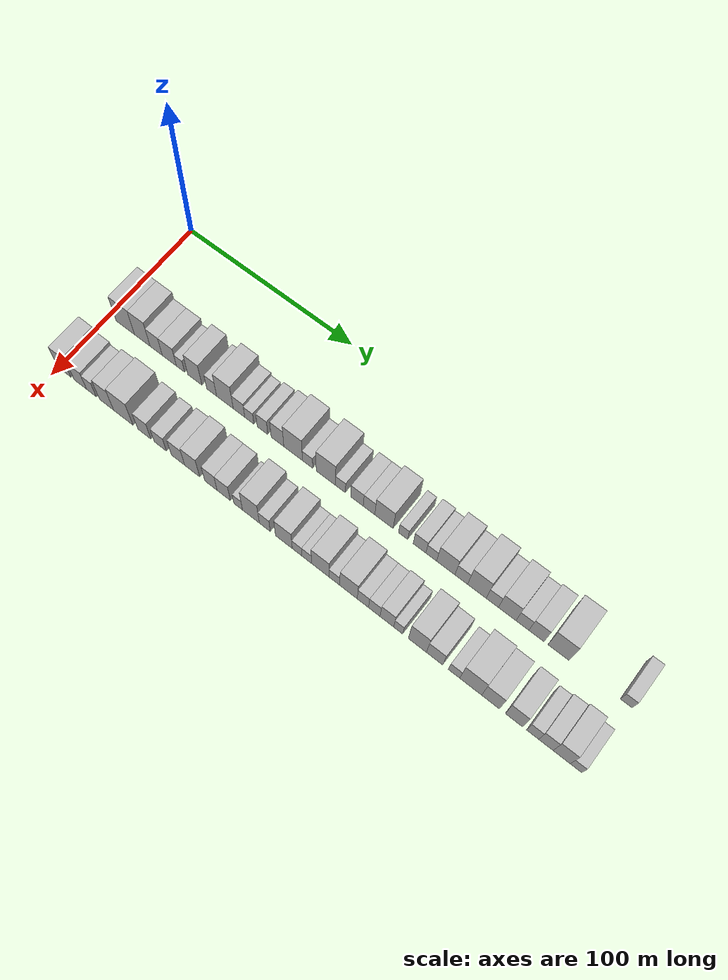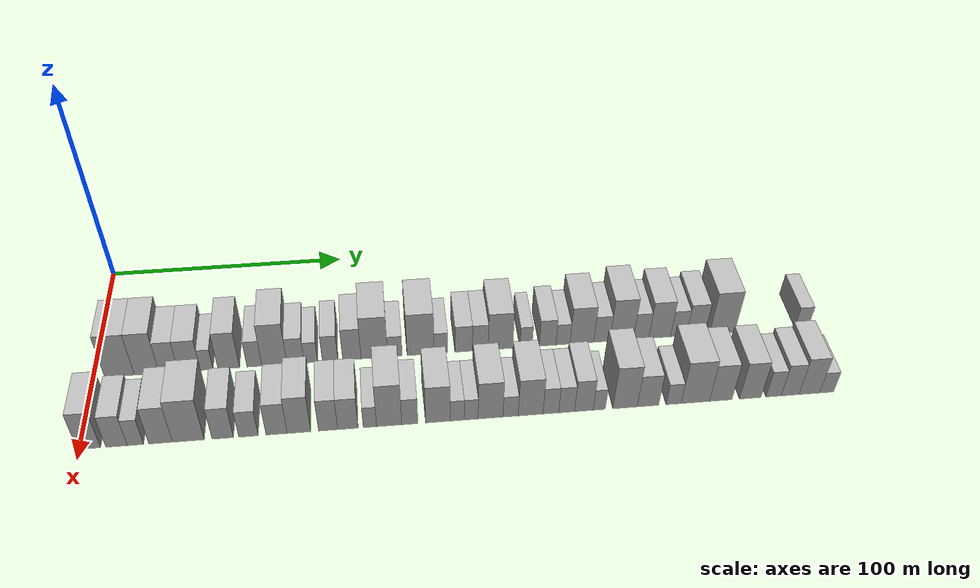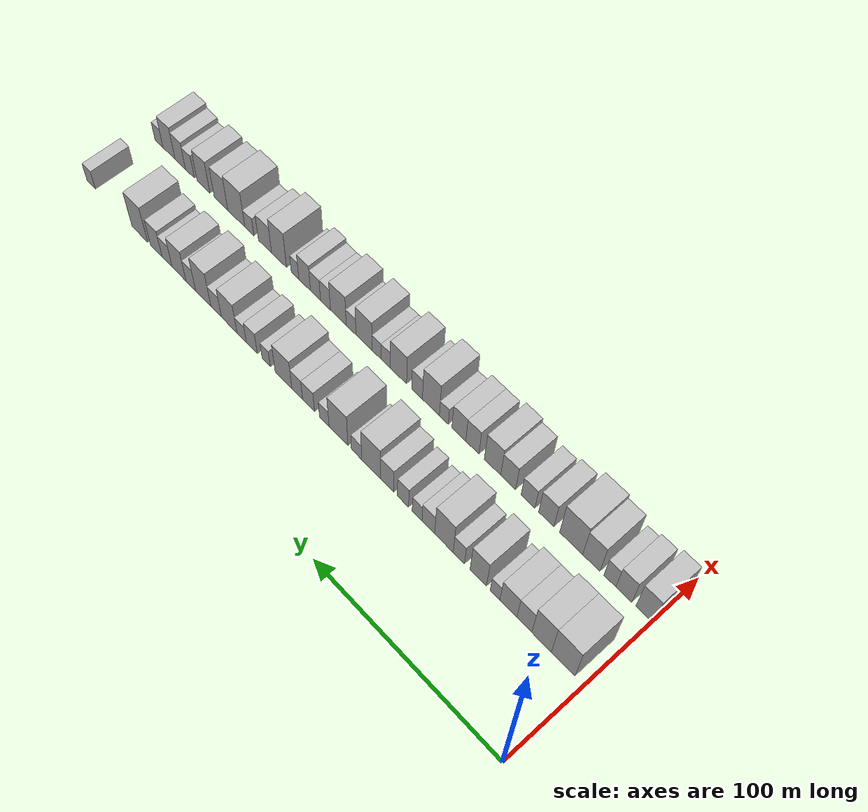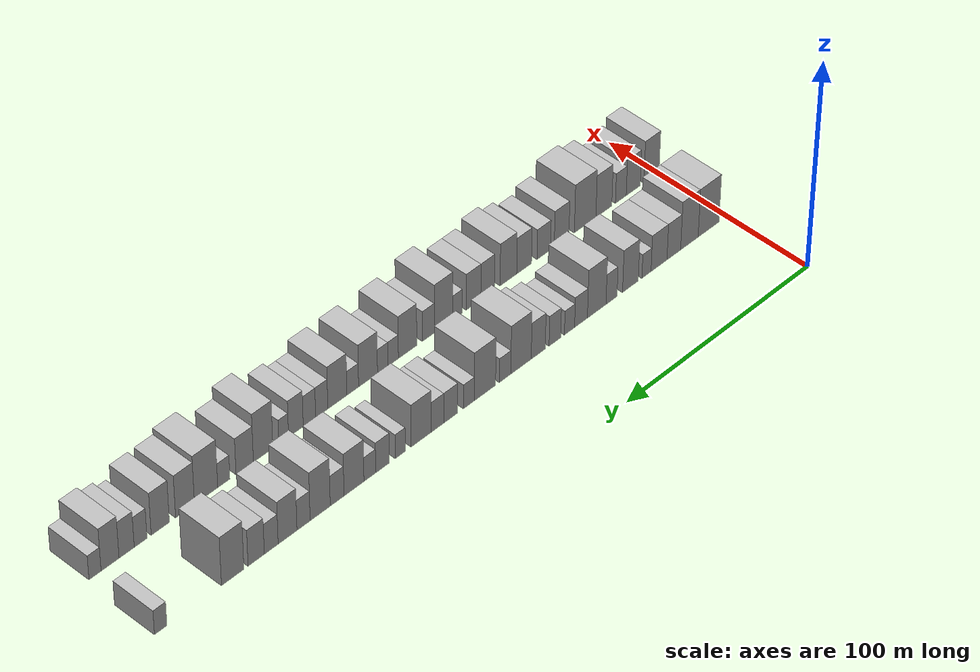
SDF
<sdf version="1.6">
 <world name="default">
  <model name="building_35">
   <static>1</static>
   <pose>50.0000 10.4625 0 0.000000 0.000000 0.000000</pose>
   <link name="link">
    <pose>0 0 12.00 0 0 0</pose>
    <collision name="collision"><geometry><box><size>20.0000 11.7853 24.0000</size></box></geometry></collision>
    <visual name="visual">
     <cast_shadows>0</cast_shadows>
     <geometry><box><size>20.0000 11.7853 24.0000</size></box></geometry>
     <material>
      <script>
       <uri>model://HANNAS_wall/materials/scripts</uri>
       <uri>model://HANNAS_wall/materials/textures</uri>
       <name>vrc/HANNAS_wall</name>
      </script>
     </material>
    </visual>
   </link>
  </model>
  <model name="building_36">
   <static>1</static>
   <pose>50.0000 21.2735 0 0.000000 0.000000 0.000000</pose>
   <link name="link">
    <pose>0 0 12.00 0 0 0</pose>
    <collision name="collision"><geometry><box><size>20.0000 9.8368 24.0000</size></box></geometry></collision>
    <visual name="visual">
     <cast_shadows>0</cast_shadows>
     <geometry><box><size>20.0000 9.8368 24.0000</size></box></geometry>
     <material>
      <script>
       <uri>model://HANNAS_wall/materials/scripts</uri>
       <uri>model://HANNAS_wall/materials/textures</uri>
       <name>vrc/HANNAS_wall</name>
      </script>
     </material>
    </visual>
   </link>
  </model>
  <model name="building_37">
   <static>1</static>
   <pose>50.0000 30.0044 0 0.000000 0.000000 0.000000</pose>
   <link name="link">
    <pose>0 0 9.00 0 0 0</pose>
    <collision name="collision"><geometry><box><size>20.0000 7.6249 18.0000</size></box></geometry></collision>
    <visual name="visual">
     <cast_shadows>0</cast_shadows>
     <geometry><box><size>20.0000 7.6249 18.0000</size></box></geometry>
     <material>
      <script>
       <uri>model://HANNAS_wall/materials/scripts</uri>
       <uri>model://HANNAS_wall/materials/textures</uri>
       <name>vrc/HANNAS_wall</name>
      </script>
     </material>
    </visual>
   </link>
  </model>
  <model name="building_38">
   <static>1</static>
   <pose>50.0000 38.2437 0 0.000000 0.000000 0.000000</pose>
   <link name="link">
    <pose>0 0 9.00 0 0 0</pose>
    <collision name="collision"><geometry><box><size>20.0000 8.8538 18.0000</size></box></geometry></collision>
    <visual name="visual">
     <cast_shadows>0</cast_shadows>
     <geometry><box><size>20.0000 8.8538 18.0000</size></box></geometry>
     <material>
      <script>
       <uri>model://HANNAS_wall/materials/scripts</uri>
       <uri>model://HANNAS_wall/materials/textures</uri>
       <name>vrc/HANNAS_wall</name>
      </script>
     </material>
    </visual>
   </link>
  </model>
  <model name="building_39">
   <static>1</static>
   <pose>50.0000 45.1962 0 0.000000 0.000000 0.000000</pose>
   <link name="link">
    <pose>0 0 6.00 0 0 0</pose>
    <collision name="collision"><geometry><box><size>20.0000 5.0511 12.0000</size></box></geometry></collision>
    <visual name="visual">
     <cast_shadows>0</cast_shadows>
     <geometry><box><size>20.0000 5.0511 12.0000</size></box></geometry>
     <material>
      <script>
       <uri>model://HANNAS_wall/materials/scripts</uri>
       <uri>model://HANNAS_wall/materials/textures</uri>
       <name>vrc/HANNAS_wall</name>
      </script>
     </material>
    </visual>
   </link>
  </model>
  <model name="building_40">
   <static>1</static>
   <pose>50.0000 54.0515 0 0.000000 0.000000 0.000000</pose>
   <link name="link">
    <pose>0 0 10.50 0 0 0</pose>
    <collision name="collision"><geometry><box><size>20.0000 8.6596 21.0000</size></box></geometry></collision>
    <visual name="visual">
     <cast_shadows>0</cast_shadows>
     <geometry><box><size>20.0000 8.6596 21.0000</size></box></geometry>
     <material>
      <script>
       <uri>model://HANNAS_wall/materials/scripts</uri>
       <uri>model://HANNAS_wall/materials/textures</uri>
       <name>vrc/HANNAS_wall</name>
      </script>
     </material>
    </visual>
   </link>
  </model>
  <model name="building_41">
   <static>1</static>
   <pose>50.0000 64.3999 0 0.000000 0.000000 0.000000</pose>
   <link name="link">
    <pose>0 0 7.50 0 0 0</pose>
    <collision name="collision"><geometry><box><size>20.0000 6.0371 15.0000</size></box></geometry></collision>
    <visual name="visual">
     <cast_shadows>0</cast_shadows>
     <geometry><box><size>20.0000 6.0371 15.0000</size></box></geometry>
     <material>
      <script>
       <uri>model://HANNAS_wall/materials/scripts</uri>
       <uri>model://HANNAS_wall/materials/textures</uri>
       <name>vrc/HANNAS_wall</name>
      </script>
     </material>
    </visual>
   </link>
  </model>
  <model name="building_42">
   <static>1</static>
   <pose>50.0000 72.4679 0 0.000000 0.000000 0.000000</pose>
   <link name="link">
    <pose>0 0 12.00 0 0 0</pose>
    <collision name="collision"><geometry><box><size>20.0000 10.0989 24.0000</size></box></geometry></collision>
    <visual name="visual">
     <cast_shadows>0</cast_shadows>
     <geometry><box><size>20.0000 10.0989 24.0000</size></box></geometry>
     <material>
      <script>
       <uri>model://HANNAS_wall/materials/scripts</uri>
       <uri>model://HANNAS_wall/materials/textures</uri>
       <name>vrc/HANNAS_wall</name>
      </script>
     </material>
    </visual>
   </link>
  </model>
  <model name="building_43">
   <static>1</static>
   <pose>50.0000 80.9855 0 0.000000 0.000000 0.000000</pose>
   <link name="link">
    <pose>0 0 7.50 0 0 0</pose>
    <collision name="collision"><geometry><box><size>20.0000 6.9362 15.0000</size></box></geometry></collision>
    <visual name="visual">
     <cast_shadows>0</cast_shadows>
     <geometry><box><size>20.0000 6.9362 15.0000</size></box></geometry>
     <material>
      <script>
       <uri>model://HANNAS_wall/materials/scripts</uri>
       <uri>model://HANNAS_wall/materials/textures</uri>
       <name>vrc/HANNAS_wall</name>
      </script>
     </material>
    </visual>
   </link>
  </model>
  <model name="building_44">
   <static>1</static>
   <pose>50.0000 87.1858 0 0.000000 0.000000 0.000000</pose>
   <link name="link">
    <pose>0 0 6.00 0 0 0</pose>
    <collision name="collision"><geometry><box><size>20.0000 5.4644 12.0000</size></box></geometry></collision>
    <visual name="visual">
     <cast_shadows>0</cast_shadows>
     <geometry><box><size>20.0000 5.4644 12.0000</size></box></geometry>
     <material>
      <script>
       <uri>model://HANNAS_wall/materials/scripts</uri>
       <uri>model://HANNAS_wall/materials/textures</uri>
       <name>vrc/HANNAS_wall</name>
      </script>
     </material>
    </visual>
   </link>
  </model>
  <model name="building_45">
   <static>1</static>
   <pose>50.0000 95.0494 0 0.000000 0.000000 0.000000</pose>
   <link name="link">
    <pose>0 0 7.50 0 0 0</pose>
    <collision name="collision"><geometry><box><size>20.0000 6.2626 15.0000</size></box></geometry></collision>
    <visual name="visual">
     <cast_shadows>0</cast_shadows>
     <geometry><box><size>20.0000 6.2626 15.0000</size></box></geometry>
     <material>
      <script>
       <uri>model://HANNAS_wall/materials/scripts</uri>
       <uri>model://HANNAS_wall/materials/textures</uri>
       <name>vrc/HANNAS_wall</name>
      </script>
     </material>
    </visual>
   </link>
  </model>
  <model name="building_46">
   <static>1</static>
   <pose>50.0000 103.9165 0 0.000000 0.000000 0.000000</pose>
   <link name="link">
    <pose>0 0 9.00 0 0 0</pose>
    <collision name="collision"><geometry><box><size>20.0000 7.4715 18.0000</size></box></geometry></collision>
    <visual name="visual">
     <cast_shadows>0</cast_shadows>
     <geometry><box><size>20.0000 7.4715 18.0000</size></box></geometry>
     <material>
      <script>
       <uri>model://HANNAS_wall/materials/scripts</uri>
       <uri>model://HANNAS_wall/materials/textures</uri>
       <name>vrc/HANNAS_wall</name>
      </script>
     </material>
    </visual>
   </link>
  </model>
  <model name="building_47">
   <static>1</static>
   <pose>50.0000 113.0806 0 0.000000 0.000000 0.000000</pose>
   <link name="link">
    <pose>0 0 12.00 0 0 0</pose>
    <collision name="collision"><geometry><box><size>20.0000 10.8569 24.0000</size></box></geometry></collision>
    <visual name="visual">
     <cast_shadows>0</cast_shadows>
     <geometry><box><size>20.0000 10.8569 24.0000</size></box></geometry>
     <material>
      <script>
       <uri>model://HANNAS_wall/materials/scripts</uri>
       <uri>model://HANNAS_wall/materials/textures</uri>
       <name>vrc/HANNAS_wall</name>
      </script>
     </material>
    </visual>
   </link>
  </model>
  <model name="building_48">
   <static>1</static>
   <pose>50.0000 121.5060 0 0.000000 0.000000 0.000000</pose>
   <link name="link">
    <pose>0 0 6.00 0 0 0</pose>
    <collision name="collision"><geometry><box><size>20.0000 5.9939 12.0000</size></box></geometry></collision>
    <visual name="visual">
     <cast_shadows>0</cast_shadows>
     <geometry><box><size>20.0000 5.9939 12.0000</size></box></geometry>
     <material>
      <script>
       <uri>model://HANNAS_wall/materials/scripts</uri>
       <uri>model://HANNAS_wall/materials/textures</uri>
       <name>vrc/HANNAS_wall</name>
      </script>
     </material>
    </visual>
   </link>
  </model>
  <model name="building_49">
   <static>1</static>
   <pose>50.0000 132.0567 0 0.000000 0.000000 0.000000</pose>
   <link name="link">
    <pose>0 0 12.00 0 0 0</pose>
    <collision name="collision"><geometry><box><size>20.0000 11.1073 24.0000</size></box></geometry></collision>
    <visual name="visual">
     <cast_shadows>0</cast_shadows>
     <geometry><box><size>20.0000 11.1073 24.0000</size></box></geometry>
     <material>
      <script>
       <uri>model://HANNAS_wall/materials/scripts</uri>
       <uri>model://HANNAS_wall/materials/textures</uri>
       <name>vrc/HANNAS_wall</name>
      </script>
     </material>
    </visual>
   </link>
  </model>
  <model name="building_50">
   <static>1</static>
   <pose>50.0000 140.4432 0 0.000000 0.000000 0.000000</pose>
   <link name="link">
    <pose>0 0 6.00 0 0 0</pose>
    <collision name="collision"><geometry><box><size>20.0000 5.6658 12.0000</size></box></geometry></collision>
    <visual name="visual">
     <cast_shadows>0</cast_shadows>
     <geometry><box><size>20.0000 5.6658 12.0000</size></box></geometry>
     <material>
      <script>
       <uri>model://HANNAS_wall/materials/scripts</uri>
       <uri>model://HANNAS_wall/materials/textures</uri>
       <name>vrc/HANNAS_wall</name>
      </script>
     </material>
    </visual>
   </link>
  </model>
  <model name="building_51">
   <static>1</static>
   <pose>50.0000 149.8587 0 0.000000 0.000000 0.000000</pose>
   <link name="link">
    <pose>0 0 7.50 0 0 0</pose>
    <collision name="collision"><geometry><box><size>20.0000 7.1651 15.0000</size></box></geometry></collision>
    <visual name="visual">
     <cast_shadows>0</cast_shadows>
     <geometry><box><size>20.0000 7.1651 15.0000</size></box></geometry>
     <material>
      <script>
       <uri>model://HANNAS_wall/materials/scripts</uri>
       <uri>model://HANNAS_wall/materials/textures</uri>
       <name>vrc/HANNAS_wall</name>
      </script>
     </material>
    </visual>
   </link>
  </model>
  <model name="building_52">
   <static>1</static>
   <pose>50.0000 156.7073 0 0.000000 0.000000 0.000000</pose>
   <link name="link">
    <pose>0 0 7.50 0 0 0</pose>
    <collision name="collision"><geometry><box><size>20.0000 6.5321 15.0000</size></box></geometry></collision>
    <visual name="visual">
     <cast_shadows>0</cast_shadows>
     <geometry><box><size>20.0000 6.5321 15.0000</size></box></geometry>
     <material>
      <script>
       <uri>model://HANNAS_wall/materials/scripts</uri>
       <uri>model://HANNAS_wall/materials/textures</uri>
       <name>vrc/HANNAS_wall</name>
      </script>
     </material>
    </visual>
   </link>
  </model>
  <model name="building_53">
   <static>1</static>
   <pose>50.0000 165.1053 0 0.000000 0.000000 0.000000</pose>
   <link name="link">
    <pose>0 0 10.50 0 0 0</pose>
    <collision name="collision"><geometry><box><size>20.0000 10.2638 21.0000</size></box></geometry></collision>
    <visual name="visual">
     <cast_shadows>0</cast_shadows>
     <geometry><box><size>20.0000 10.2638 21.0000</size></box></geometry>
     <material>
      <script>
       <uri>model://HANNAS_wall/materials/scripts</uri>
       <uri>model://HANNAS_wall/materials/textures</uri>
       <name>vrc/HANNAS_wall</name>
      </script>
     </material>
    </visual>
   </link>
  </model>
  <model name="building_54">
   <static>1</static>
   <pose>50.0000 175.7789 0 0.000000 0.000000 0.000000</pose>
   <link name="link">
    <pose>0 0 6.00 0 0 0</pose>
    <collision name="collision"><geometry><box><size>20.0000 5.0835 12.0000</size></box></geometry></collision>
    <visual name="visual">
     <cast_shadows>0</cast_shadows>
     <geometry><box><size>20.0000 5.0835 12.0000</size></box></geometry>
     <material>
      <script>
       <uri>model://HANNAS_wall/materials/scripts</uri>
       <uri>model://HANNAS_wall/materials/textures</uri>
       <name>vrc/HANNAS_wall</name>
      </script>
     </material>
    </visual>
   </link>
  </model>
  <model name="building_55">
   <static>1</static>
   <pose>50.0000 184.7896 0 0.000000 0.000000 0.000000</pose>
   <link name="link">
    <pose>0 0 7.50 0 0 0</pose>
    <collision name="collision"><geometry><box><size>20.0000 6.9380 15.0000</size></box></geometry></collision>
    <visual name="visual">
     <cast_shadows>0</cast_shadows>
     <geometry><box><size>20.0000 6.9380 15.0000</size></box></geometry>
     <material>
      <script>
       <uri>model://HANNAS_wall/materials/scripts</uri>
       <uri>model://HANNAS_wall/materials/textures</uri>
       <name>vrc/HANNAS_wall</name>
      </script>
     </material>
    </visual>
   </link>
  </model>
  <model name="building_56">
   <static>1</static>
   <pose>50.0000 191.2132 0 0.000000 0.000000 0.000000</pose>
   <link name="link">
    <pose>0 0 6.00 0 0 0</pose>
    <collision name="collision"><geometry><box><size>20.0000 5.9091 12.0000</size></box></geometry></collision>
    <visual name="visual">
     <cast_shadows>0</cast_shadows>
     <geometry><box><size>20.0000 5.9091 12.0000</size></box></geometry>
     <material>
      <script>
       <uri>model://HANNAS_wall/materials/scripts</uri>
       <uri>model://HANNAS_wall/materials/textures</uri>
       <name>vrc/HANNAS_wall</name>
      </script>
     </material>
    </visual>
   </link>
  </model>
  <model name="building_57">
   <static>1</static>
   <pose>50.0000 199.1576 0 0.000000 0.000000 0.000000</pose>
   <link name="link">
    <pose>0 0 10.50 0 0 0</pose>
    <collision name="collision"><geometry><box><size>20.0000 9.9797 21.0000</size></box></geometry></collision>
    <visual name="visual">
     <cast_shadows>0</cast_shadows>
     <geometry><box><size>20.0000 9.9797 21.0000</size></box></geometry>
     <material>
      <script>
       <uri>model://HANNAS_wall/materials/scripts</uri>
       <uri>model://HANNAS_wall/materials/textures</uri>
       <name>vrc/HANNAS_wall</name>
      </script>
     </material>
    </visual>
   </link>
  </model>
  <model name="building_58">
   <static>1</static>
   <pose>50.0000 207.5786 0 0.000000 0.000000 0.000000</pose>
   <link name="link">
    <pose>0 0 7.50 0 0 0</pose>
    <collision name="collision"><geometry><box><size>20.0000 6.8624 15.0000</size></box></geometry></collision>
    <visual name="visual">
     <cast_shadows>0</cast_shadows>
     <geometry><box><size>20.0000 6.8624 15.0000</size></box></geometry>
     <material>
      <script>
       <uri>model://HANNAS_wall/materials/scripts</uri>
       <uri>model://HANNAS_wall/materials/textures</uri>
       <name>vrc/HANNAS_wall</name>
      </script>
     </material>
    </visual>
   </link>
  </model>
  <model name="building_59">
   <static>1</static>
   <pose>50.0000 215.9971 0 0.000000 0.000000 0.000000</pose>
   <link name="link">
    <pose>0 0 12.00 0 0 0</pose>
    <collision name="collision"><geometry><box><size>20.0000 9.9745 24.0000</size></box></geometry></collision>
    <visual name="visual">
     <cast_shadows>0</cast_shadows>
     <geometry><box><size>20.0000 9.9745 24.0000</size></box></geometry>
     <material>
      <script>
       <uri>model://HANNAS_wall/materials/scripts</uri>
       <uri>model://HANNAS_wall/materials/textures</uri>
       <name>vrc/HANNAS_wall</name>
      </script>
     </material>
    </visual>
   </link>
  </model>
  <model name="building_60">
   <static>1</static>
   <pose>50.0000 224.2173 0 0.000000 0.000000 0.000000</pose>
   <link name="link">
    <pose>0 0 7.50 0 0 0</pose>
    <collision name="collision"><geometry><box><size>20.0000 6.4659 15.0000</size></box></geometry></collision>
    <visual name="visual">
     <cast_shadows>0</cast_shadows>
     <geometry><box><size>20.0000 6.4659 15.0000</size></box></geometry>
     <material>
      <script>
       <uri>model://HANNAS_wall/materials/scripts</uri>
       <uri>model://HANNAS_wall/materials/textures</uri>
       <name>vrc/HANNAS_wall</name>
      </script>
     </material>
    </visual>
   </link>
  </model>
  <model name="building_61">
   <static>1</static>
   <pose>50.0000 232.0735 0 0.000000 0.000000 0.000000</pose>
   <link name="link">
    <pose>0 0 10.50 0 0 0</pose>
    <collision name="collision"><geometry><box><size>20.0000 9.2464 21.0000</size></box></geometry></collision>
    <visual name="visual">
     <cast_shadows>0</cast_shadows>
     <geometry><box><size>20.0000 9.2464 21.0000</size></box></geometry>
     <material>
      <script>
       <uri>model://HANNAS_wall/materials/scripts</uri>
       <uri>model://HANNAS_wall/materials/textures</uri>
       <name>vrc/HANNAS_wall</name>
      </script>
     </material>
    </visual>
   </link>
  </model>
  <model name="building_62">
   <static>1</static>
   <pose>50.0000 240.0651 0 0.000000 0.000000 0.000000</pose>
   <link name="link">
    <pose>0 0 7.50 0 0 0</pose>
    <collision name="collision"><geometry><box><size>20.0000 6.7368 15.0000</size></box></geometry></collision>
    <visual name="visual">
     <cast_shadows>0</cast_shadows>
     <geometry><box><size>20.0000 6.7368 15.0000</size></box></geometry>
     <material>
      <script>
       <uri>model://HANNAS_wall/materials/scripts</uri>
       <uri>model://HANNAS_wall/materials/textures</uri>
       <name>vrc/HANNAS_wall</name>
      </script>
     </material>
    </visual>
   </link>
  </model>
  <model name="building_63">
   <static>1</static>
   <pose>50.0000 247.3832 0 0.000000 0.000000 0.000000</pose>
   <link name="link">
    <pose>0 0 9.00 0 0 0</pose>
    <collision name="collision"><geometry><box><size>20.0000 7.8994 18.0000</size></box></geometry></collision>
    <visual name="visual">
     <cast_shadows>0</cast_shadows>
     <geometry><box><size>20.0000 7.8994 18.0000</size></box></geometry>
     <material>
      <script>
       <uri>model://HANNAS_wall/materials/scripts</uri>
       <uri>model://HANNAS_wall/materials/textures</uri>
       <name>vrc/HANNAS_wall</name>
      </script>
     </material>
    </visual>
   </link>
  </model>
  <model name="building_64">
   <static>1</static>
   <pose>50.0000 258.7395 0 0.000000 0.000000 0.000000</pose>
   <link name="link">
    <pose>0 0 12.00 0 0 0</pose>
    <collision name="collision"><geometry><box><size>20.0000 10.8131 24.0000</size></box></geometry></collision>
    <visual name="visual">
     <cast_shadows>0</cast_shadows>
     <geometry><box><size>20.0000 10.8131 24.0000</size></box></geometry>
     <material>
      <script>
       <uri>model://HANNAS_wall/materials/scripts</uri>
       <uri>model://HANNAS_wall/materials/textures</uri>
       <name>vrc/HANNAS_wall</name>
      </script>
     </material>
    </visual>
   </link>
  </model>
  <model name="building_65">
   <static>1</static>
   <pose>50.0000 293.0234 0 0.000000 0.000000 0.000000</pose>
   <link name="link">
    <pose>0 0 6.00 0 0 0</pose>
    <collision name="collision"><geometry><box><size>20.0000 5.9182 12.0000</size></box></geometry></collision>
    <visual name="visual">
     <cast_shadows>0</cast_shadows>
     <geometry><box><size>20.0000 5.9182 12.0000</size></box></geometry>
     <material>
      <script>
       <uri>model://HANNAS_wall/materials/scripts</uri>
       <uri>model://HANNAS_wall/materials/textures</uri>
       <name>vrc/HANNAS_wall</name>
      </script>
     </material>
    </visual>
   </link>
  </model>
  <model name="building_97">
   <static>1</static>
   <pose>85.0000 3.7071 0 0.000000 0.000000 0.000000</pose>
   <link name="link">
    <pose>0 0 10.50 0 0 0</pose>
    <collision name="collision"><geometry><box><size>20.0000 8.6194 21.0000</size></box></geometry></collision>
    <visual name="visual">
     <cast_shadows>0</cast_shadows>
     <geometry><box><size>20.0000 8.6194 21.0000</size></box></geometry>
     <material>
      <script>
       <uri>model://HANNAS_wall/materials/scripts</uri>
       <uri>model://HANNAS_wall/materials/textures</uri>
       <name>vrc/HANNAS_wall</name>
      </script>
     </material>
    </visual>
   </link>
  </model>
  <model name="building_98">
   <static>1</static>
   <pose>85.0000 13.9887 0 0.000000 0.000000 0.000000</pose>
   <link name="link">
    <pose>0 0 9.00 0 0 0</pose>
    <collision name="collision"><geometry><box><size>20.0000 7.9437 18.0000</size></box></geometry></collision>
    <visual name="visual">
     <cast_shadows>0</cast_shadows>
     <geometry><box><size>20.0000 7.9437 18.0000</size></box></geometry>
     <material>
      <script>
       <uri>model://HANNAS_wall/materials/scripts</uri>
       <uri>model://HANNAS_wall/materials/textures</uri>
       <name>vrc/HANNAS_wall</name>
      </script>
     </material>
    </visual>
   </link>
  </model>
  <model name="building_99">
   <static>1</static>
   <pose>85.0000 20.9984 0 0.000000 0.000000 0.000000</pose>
   <link name="link">
    <pose>0 0 7.50 0 0 0</pose>
    <collision name="collision"><geometry><box><size>20.0000 6.0759 15.0000</size></box></geometry></collision>
    <visual name="visual">
     <cast_shadows>0</cast_shadows>
     <geometry><box><size>20.0000 6.0759 15.0000</size></box></geometry>
     <material>
      <script>
       <uri>model://HANNAS_wall/materials/scripts</uri>
       <uri>model://HANNAS_wall/materials/textures</uri>
       <name>vrc/HANNAS_wall</name>
      </script>
     </material>
    </visual>
   </link>
  </model>
  <model name="building_100">
   <static>1</static>
   <pose>85.0000 30.4669 0 0.000000 0.000000 0.000000</pose>
   <link name="link">
    <pose>0 0 10.50 0 0 0</pose>
    <collision name="collision"><geometry><box><size>20.0000 8.8610 21.0000</size></box></geometry></collision>
    <visual name="visual">
     <cast_shadows>0</cast_shadows>
     <geometry><box><size>20.0000 8.8610 21.0000</size></box></geometry>
     <material>
      <script>
       <uri>model://HANNAS_wall/materials/scripts</uri>
       <uri>model://HANNAS_wall/materials/textures</uri>
       <name>vrc/HANNAS_wall</name>
      </script>
     </material>
    </visual>
   </link>
  </model>
  <model name="building_101">
   <static>1</static>
   <pose>85.0000 40.8617 0 0.000000 0.000000 0.000000</pose>
   <link name="link">
    <pose>0 0 12.00 0 0 0</pose>
    <collision name="collision"><geometry><box><size>20.0000 11.9285 24.0000</size></box></geometry></collision>
    <visual name="visual">
     <cast_shadows>0</cast_shadows>
     <geometry><box><size>20.0000 11.9285 24.0000</size></box></geometry>
     <material>
      <script>
       <uri>model://HANNAS_wall/materials/scripts</uri>
       <uri>model://HANNAS_wall/materials/textures</uri>
       <name>vrc/HANNAS_wall</name>
      </script>
     </material>
    </visual>
   </link>
  </model>
  <model name="building_102">
   <static>1</static>
   <pose>85.0000 53.8593 0 0.000000 0.000000 0.000000</pose>
   <link name="link">
    <pose>0 0 9.00 0 0 0</pose>
    <collision name="collision"><geometry><box><size>20.0000 8.0666 18.0000</size></box></geometry></collision>
    <visual name="visual">
     <cast_shadows>0</cast_shadows>
     <geometry><box><size>20.0000 8.0666 18.0000</size></box></geometry>
     <material>
      <script>
       <uri>model://HANNAS_wall/materials/scripts</uri>
       <uri>model://HANNAS_wall/materials/textures</uri>
       <name>vrc/HANNAS_wall</name>
      </script>
     </material>
    </visual>
   </link>
  </model>
  <model name="building_103">
   <static>1</static>
   <pose>85.0000 63.5813 0 0.000000 0.000000 0.000000</pose>
   <link name="link">
    <pose>0 0 7.50 0 0 0</pose>
    <collision name="collision"><geometry><box><size>20.0000 7.3774 15.0000</size></box></geometry></collision>
    <visual name="visual">
     <cast_shadows>0</cast_shadows>
     <geometry><box><size>20.0000 7.3774 15.0000</size></box></geometry>
     <material>
      <script>
       <uri>model://HANNAS_wall/materials/scripts</uri>
       <uri>model://HANNAS_wall/materials/textures</uri>
       <name>vrc/HANNAS_wall</name>
      </script>
     </material>
    </visual>
   </link>
  </model>
  <model name="building_104">
   <static>1</static>
   <pose>85.0000 74.2972 0 0.000000 0.000000 0.000000</pose>
   <link name="link">
    <pose>0 0 9.00 0 0 0</pose>
    <collision name="collision"><geometry><box><size>20.0000 8.0543 18.0000</size></box></geometry></collision>
    <visual name="visual">
     <cast_shadows>0</cast_shadows>
     <geometry><box><size>20.0000 8.0543 18.0000</size></box></geometry>
     <material>
      <script>
       <uri>model://HANNAS_wall/materials/scripts</uri>
       <uri>model://HANNAS_wall/materials/textures</uri>
       <name>vrc/HANNAS_wall</name>
      </script>
     </material>
    </visual>
   </link>
  </model>
  <model name="building_105">
   <static>1</static>
   <pose>85.0000 82.8078 0 0.000000 0.000000 0.000000</pose>
   <link name="link">
    <pose>0 0 10.50 0 0 0</pose>
    <collision name="collision"><geometry><box><size>20.0000 8.9671 21.0000</size></box></geometry></collision>
    <visual name="visual">
     <cast_shadows>0</cast_shadows>
     <geometry><box><size>20.0000 8.9671 21.0000</size></box></geometry>
     <material>
      <script>
       <uri>model://HANNAS_wall/materials/scripts</uri>
       <uri>model://HANNAS_wall/materials/textures</uri>
       <name>vrc/HANNAS_wall</name>
      </script>
     </material>
    </visual>
   </link>
  </model>
  <model name="building_106">
   <static>1</static>
   <pose>85.0000 93.9615 0 0.000000 0.000000 0.000000</pose>
   <link name="link">
    <pose>0 0 9.00 0 0 0</pose>
    <collision name="collision"><geometry><box><size>20.0000 7.3402 18.0000</size></box></geometry></collision>
    <visual name="visual">
     <cast_shadows>0</cast_shadows>
     <geometry><box><size>20.0000 7.3402 18.0000</size></box></geometry>
     <material>
      <script>
       <uri>model://HANNAS_wall/materials/scripts</uri>
       <uri>model://HANNAS_wall/materials/textures</uri>
       <name>vrc/HANNAS_wall</name>
      </script>
     </material>
    </visual>
   </link>
  </model>
  <model name="building_107">
   <static>1</static>
   <pose>85.0000 101.5385 0 0.000000 0.000000 0.000000</pose>
   <link name="link">
    <pose>0 0 9.00 0 0 0</pose>
    <collision name="collision"><geometry><box><size>20.0000 7.8138 18.0000</size></box></geometry></collision>
    <visual name="visual">
     <cast_shadows>0</cast_shadows>
     <geometry><box><size>20.0000 7.8138 18.0000</size></box></geometry>
     <material>
      <script>
       <uri>model://HANNAS_wall/materials/scripts</uri>
       <uri>model://HANNAS_wall/materials/textures</uri>
       <name>vrc/HANNAS_wall</name>
      </script>
     </material>
    </visual>
   </link>
  </model>
  <model name="building_108">
   <static>1</static>
   <pose>85.0000 109.9894 0 0.000000 0.000000 0.000000</pose>
   <link name="link">
    <pose>0 0 6.00 0 0 0</pose>
    <collision name="collision"><geometry><box><size>20.0000 5.0880 12.0000</size></box></geometry></collision>
    <visual name="visual">
     <cast_shadows>0</cast_shadows>
     <geometry><box><size>20.0000 5.0880 12.0000</size></box></geometry>
     <material>
      <script>
       <uri>model://HANNAS_wall/materials/scripts</uri>
       <uri>model://HANNAS_wall/materials/textures</uri>
       <name>vrc/HANNAS_wall</name>
      </script>
     </material>
    </visual>
   </link>
  </model>
  <model name="building_109">
   <static>1</static>
   <pose>85.0000 117.4106 0 0.000000 0.000000 0.000000</pose>
   <link name="link">
    <pose>0 0 12.00 0 0 0</pose>
    <collision name="collision"><geometry><box><size>20.0000 9.7546 24.0000</size></box></geometry></collision>
    <visual name="visual">
     <cast_shadows>0</cast_shadows>
     <geometry><box><size>20.0000 9.7546 24.0000</size></box></geometry>
     <material>
      <script>
       <uri>model://HANNAS_wall/materials/scripts</uri>
       <uri>model://HANNAS_wall/materials/textures</uri>
       <name>vrc/HANNAS_wall</name>
      </script>
     </material>
    </visual>
   </link>
  </model>
  <model name="building_110">
   <static>1</static>
   <pose>85.0000 125.3995 0 0.000000 0.000000 0.000000</pose>
   <link name="link">
    <pose>0 0 7.50 0 0 0</pose>
    <collision name="collision"><geometry><box><size>20.0000 6.2232 15.0000</size></box></geometry></collision>
    <visual name="visual">
     <cast_shadows>0</cast_shadows>
     <geometry><box><size>20.0000 6.2232 15.0000</size></box></geometry>
     <material>
      <script>
       <uri>model://HANNAS_wall/materials/scripts</uri>
       <uri>model://HANNAS_wall/materials/textures</uri>
       <name>vrc/HANNAS_wall</name>
      </script>
     </material>
    </visual>
   </link>
  </model>
  <model name="building_111">
   <static>1</static>
   <pose>85.0000 136.2915 0 0.000000 0.000000 0.000000</pose>
   <link name="link">
    <pose>0 0 10.50 0 0 0</pose>
    <collision name="collision"><geometry><box><size>20.0000 9.5607 21.0000</size></box></geometry></collision>
    <visual name="visual">
     <cast_shadows>0</cast_shadows>
     <geometry><box><size>20.0000 9.5607 21.0000</size></box></geometry>
     <material>
      <script>
       <uri>model://HANNAS_wall/materials/scripts</uri>
       <uri>model://HANNAS_wall/materials/textures</uri>
       <name>vrc/HANNAS_wall</name>
      </script>
     </material>
    </visual>
   </link>
  </model>
  <model name="building_112">
   <static>1</static>
   <pose>85.0000 143.8076 0 0.000000 0.000000 0.000000</pose>
   <link name="link">
    <pose>0 0 6.00 0 0 0</pose>
    <collision name="collision"><geometry><box><size>20.0000 5.4716 12.0000</size></box></geometry></collision>
    <visual name="visual">
     <cast_shadows>0</cast_shadows>
     <geometry><box><size>20.0000 5.4716 12.0000</size></box></geometry>
     <material>
      <script>
       <uri>model://HANNAS_wall/materials/scripts</uri>
       <uri>model://HANNAS_wall/materials/textures</uri>
       <name>vrc/HANNAS_wall</name>
      </script>
     </material>
    </visual>
   </link>
  </model>
  <model name="building_113">
   <static>1</static>
   <pose>85.0000 149.2277 0 0.000000 0.000000 0.000000</pose>
   <link name="link">
    <pose>0 0 6.00 0 0 0</pose>
    <collision name="collision"><geometry><box><size>20.0000 5.3686 12.0000</size></box></geometry></collision>
    <visual name="visual">
     <cast_shadows>0</cast_shadows>
     <geometry><box><size>20.0000 5.3686 12.0000</size></box></geometry>
     <material>
      <script>
       <uri>model://HANNAS_wall/materials/scripts</uri>
       <uri>model://HANNAS_wall/materials/textures</uri>
       <name>vrc/HANNAS_wall</name>
      </script>
     </material>
    </visual>
   </link>
  </model>
  <model name="building_114">
   <static>1</static>
   <pose>85.0000 156.7745 0 0.000000 0.000000 0.000000</pose>
   <link name="link">
    <pose>0 0 10.50 0 0 0</pose>
    <collision name="collision"><geometry><box><size>20.0000 9.7251 21.0000</size></box></geometry></collision>
    <visual name="visual">
     <cast_shadows>0</cast_shadows>
     <geometry><box><size>20.0000 9.7251 21.0000</size></box></geometry>
     <material>
      <script>
       <uri>model://HANNAS_wall/materials/scripts</uri>
       <uri>model://HANNAS_wall/materials/textures</uri>
       <name>vrc/HANNAS_wall</name>
      </script>
     </material>
    </visual>
   </link>
  </model>
  <model name="building_115">
   <static>1</static>
   <pose>85.0000 164.6234 0 0.000000 0.000000 0.000000</pose>
   <link name="link">
    <pose>0 0 6.00 0 0 0</pose>
    <collision name="collision"><geometry><box><size>20.0000 5.9726 12.0000</size></box></geometry></collision>
    <visual name="visual">
     <cast_shadows>0</cast_shadows>
     <geometry><box><size>20.0000 5.9726 12.0000</size></box></geometry>
     <material>
      <script>
       <uri>model://HANNAS_wall/materials/scripts</uri>
       <uri>model://HANNAS_wall/materials/textures</uri>
       <name>vrc/HANNAS_wall</name>
      </script>
     </material>
    </visual>
   </link>
  </model>
  <model name="building_116">
   <static>1</static>
   <pose>85.0000 172.4846 0 0.000000 0.000000 0.000000</pose>
   <link name="link">
    <pose>0 0 10.50 0 0 0</pose>
    <collision name="collision"><geometry><box><size>20.0000 9.7497 21.0000</size></box></geometry></collision>
    <visual name="visual">
     <cast_shadows>0</cast_shadows>
     <geometry><box><size>20.0000 9.7497 21.0000</size></box></geometry>
     <material>
      <script>
       <uri>model://HANNAS_wall/materials/scripts</uri>
       <uri>model://HANNAS_wall/materials/textures</uri>
       <name>vrc/HANNAS_wall</name>
      </script>
     </material>
    </visual>
   </link>
  </model>
  <model name="building_117">
   <static>1</static>
   <pose>85.0000 180.4429 0 0.000000 0.000000 0.000000</pose>
   <link name="link">
    <pose>0 0 7.50 0 0 0</pose>
    <collision name="collision"><geometry><box><size>20.0000 6.1670 15.0000</size></box></geometry></collision>
    <visual name="visual">
     <cast_shadows>0</cast_shadows>
     <geometry><box><size>20.0000 6.1670 15.0000</size></box></geometry>
     <material>
      <script>
       <uri>model://HANNAS_wall/materials/scripts</uri>
       <uri>model://HANNAS_wall/materials/textures</uri>
       <name>vrc/HANNAS_wall</name>
      </script>
     </material>
    </visual>
   </link>
  </model>
  <model name="building_118">
   <static>1</static>
   <pose>85.0000 186.6596 0 0.000000 0.000000 0.000000</pose>
   <link name="link">
    <pose>0 0 7.50 0 0 0</pose>
    <collision name="collision"><geometry><box><size>20.0000 6.2663 15.0000</size></box></geometry></collision>
    <visual name="visual">
     <cast_shadows>0</cast_shadows>
     <geometry><box><size>20.0000 6.2663 15.0000</size></box></geometry>
     <material>
      <script>
       <uri>model://HANNAS_wall/materials/scripts</uri>
       <uri>model://HANNAS_wall/materials/textures</uri>
       <name>vrc/HANNAS_wall</name>
      </script>
     </material>
    </visual>
   </link>
  </model>
  <model name="building_119">
   <static>1</static>
   <pose>85.0000 193.4872 0 0.000000 0.000000 0.000000</pose>
   <link name="link">
    <pose>0 0 9.00 0 0 0</pose>
    <collision name="collision"><geometry><box><size>20.0000 7.3888 18.0000</size></box></geometry></collision>
    <visual name="visual">
     <cast_shadows>0</cast_shadows>
     <geometry><box><size>20.0000 7.3888 18.0000</size></box></geometry>
     <material>
      <script>
       <uri>model://HANNAS_wall/materials/scripts</uri>
       <uri>model://HANNAS_wall/materials/textures</uri>
       <name>vrc/HANNAS_wall</name>
      </script>
     </material>
    </visual>
   </link>
  </model>
  <model name="building_120">
   <static>1</static>
   <pose>85.0000 199.6063 0 0.000000 0.000000 0.000000</pose>
   <link name="link">
    <pose>0 0 6.00 0 0 0</pose>
    <collision name="collision"><geometry><box><size>20.0000 4.8495 12.0000</size></box></geometry></collision>
    <visual name="visual">
     <cast_shadows>0</cast_shadows>
     <geometry><box><size>20.0000 4.8495 12.0000</size></box></geometry>
     <material>
      <script>
       <uri>model://HANNAS_wall/materials/scripts</uri>
       <uri>model://HANNAS_wall/materials/textures</uri>
       <name>vrc/HANNAS_wall</name>
      </script>
     </material>
    </visual>
   </link>
  </model>
  <model name="building_121">
   <static>1</static>
   <pose>85.0000 209.8693 0 0.000000 0.000000 0.000000</pose>
   <link name="link">
    <pose>0 0 12.00 0 0 0</pose>
    <collision name="collision"><geometry><box><size>20.0000 9.6765 24.0000</size></box></geometry></collision>
    <visual name="visual">
     <cast_shadows>0</cast_shadows>
     <geometry><box><size>20.0000 9.6765 24.0000</size></box></geometry>
     <material>
      <script>
       <uri>model://HANNAS_wall/materials/scripts</uri>
       <uri>model://HANNAS_wall/materials/textures</uri>
       <name>vrc/HANNAS_wall</name>
      </script>
     </material>
    </visual>
   </link>
  </model>
  <model name="building_122">
   <static>1</static>
   <pose>85.0000 219.0020 0 0.000000 0.000000 0.000000</pose>
   <link name="link">
    <pose>0 0 9.00 0 0 0</pose>
    <collision name="collision"><geometry><box><size>20.0000 8.5888 18.0000</size></box></geometry></collision>
    <visual name="visual">
     <cast_shadows>0</cast_shadows>
     <geometry><box><size>20.0000 8.5888 18.0000</size></box></geometry>
     <material>
      <script>
       <uri>model://HANNAS_wall/materials/scripts</uri>
       <uri>model://HANNAS_wall/materials/textures</uri>
       <name>vrc/HANNAS_wall</name>
      </script>
     </material>
    </visual>
   </link>
  </model>
  <model name="building_123">
   <static>1</static>
   <pose>85.0000 229.2820 0 0.000000 0.000000 0.000000</pose>
   <link name="link">
    <pose>0 0 6.00 0 0 0</pose>
    <collision name="collision"><geometry><box><size>20.0000 5.9712 12.0000</size></box></geometry></collision>
    <visual name="visual">
     <cast_shadows>0</cast_shadows>
     <geometry><box><size>20.0000 5.9712 12.0000</size></box></geometry>
     <material>
      <script>
       <uri>model://HANNAS_wall/materials/scripts</uri>
       <uri>model://HANNAS_wall/materials/textures</uri>
       <name>vrc/HANNAS_wall</name>
      </script>
     </material>
    </visual>
   </link>
  </model>
  <model name="building_124">
   <static>1</static>
   <pose>85.0000 237.9570 0 0.000000 0.000000 0.000000</pose>
   <link name="link">
    <pose>0 0 12.00 0 0 0</pose>
    <collision name="collision"><geometry><box><size>20.0000 11.3788 24.0000</size></box></geometry></collision>
    <visual name="visual">
     <cast_shadows>0</cast_shadows>
     <geometry><box><size>20.0000 11.3788 24.0000</size></box></geometry>
     <material>
      <script>
       <uri>model://HANNAS_wall/materials/scripts</uri>
       <uri>model://HANNAS_wall/materials/textures</uri>
       <name>vrc/HANNAS_wall</name>
      </script>
     </material>
    </visual>
   </link>
  </model>
  <model name="building_125">
   <static>1</static>
   <pose>85.0000 248.2218 0 0.000000 0.000000 0.000000</pose>
   <link name="link">
    <pose>0 0 10.50 0 0 0</pose>
    <collision name="collision"><geometry><box><size>20.0000 9.1507 21.0000</size></box></geometry></collision>
    <visual name="visual">
     <cast_shadows>0</cast_shadows>
     <geometry><box><size>20.0000 9.1507 21.0000</size></box></geometry>
     <material>
      <script>
       <uri>model://HANNAS_wall/materials/scripts</uri>
       <uri>model://HANNAS_wall/materials/textures</uri>
       <name>vrc/HANNAS_wall</name>
      </script>
     </material>
    </visual>
   </link>
  </model>
  <model name="building_126">
   <static>1</static>
   <pose>85.0000 260.1811 0 0.000000 0.000000 0.000000</pose>
   <link name="link">
    <pose>0 0 10.50 0 0 0</pose>
    <collision name="collision"><geometry><box><size>20.0000 8.7679 21.0000</size></box></geometry></collision>
    <visual name="visual">
     <cast_shadows>0</cast_shadows>
     <geometry><box><size>20.0000 8.7679 21.0000</size></box></geometry>
     <material>
      <script>
       <uri>model://HANNAS_wall/materials/scripts</uri>
       <uri>model://HANNAS_wall/materials/textures</uri>
       <name>vrc/HANNAS_wall</name>
      </script>
     </material>
    </visual>
   </link>
  </model>
  <model name="building_127">
   <static>1</static>
   <pose>85.0000 269.6247 0 0.000000 0.000000 0.000000</pose>
   <link name="link">
    <pose>0 0 7.50 0 0 0</pose>
    <collision name="collision"><geometry><box><size>20.0000 6.1192 15.0000</size></box></geometry></collision>
    <visual name="visual">
     <cast_shadows>0</cast_shadows>
     <geometry><box><size>20.0000 6.1192 15.0000</size></box></geometry>
     <material>
      <script>
       <uri>model://HANNAS_wall/materials/scripts</uri>
       <uri>model://HANNAS_wall/materials/textures</uri>
       <name>vrc/HANNAS_wall</name>
      </script>
     </material>
    </visual>
   </link>
  </model>
  <model name="building_128">
   <static>1</static>
   <pose>85.0000 276.2935 0 0.000000 0.000000 0.000000</pose>
   <link name="link">
    <pose>0 0 9.00 0 0 0</pose>
    <collision name="collision"><geometry><box><size>20.0000 7.2185 18.0000</size></box></geometry></collision>
    <visual name="visual">
     <cast_shadows>0</cast_shadows>
     <geometry><box><size>20.0000 7.2185 18.0000</size></box></geometry>
     <material>
      <script>
       <uri>model://HANNAS_wall/materials/scripts</uri>
       <uri>model://HANNAS_wall/materials/textures</uri>
       <name>vrc/HANNAS_wall</name>
      </script>
     </material>
    </visual>
   </link>
  </model>
  <model name="building_129">
   <static>1</static>
   <pose>85.0000 284.1583 0 0.000000 0.000000 0.000000</pose>
   <link name="link">
    <pose>0 0 10.50 0 0 0</pose>
    <collision name="collision"><geometry><box><size>20.0000 8.5111 21.0000</size></box></geometry></collision>
    <visual name="visual">
     <cast_shadows>0</cast_shadows>
     <geometry><box><size>20.0000 8.5111 21.0000</size></box></geometry>
     <material>
      <script>
       <uri>model://HANNAS_wall/materials/scripts</uri>
       <uri>model://HANNAS_wall/materials/textures</uri>
       <name>vrc/HANNAS_wall</name>
      </script>
     </material>
    </visual>
   </link>
  </model>
  <model name="building_130">
   <static>1</static>
   <pose>85.0000 291.2730 0 0.000000 0.000000 0.000000</pose>
   <link name="link">
    <pose>0 0 6.00 0 0 0</pose>
    <collision name="collision"><geometry><box><size>20.0000 5.7181 12.0000</size></box></geometry></collision>
    <visual name="visual">
     <cast_shadows>0</cast_shadows>
     <geometry><box><size>20.0000 5.7181 12.0000</size></box></geometry>
     <material>
      <script>
       <uri>model://HANNAS_wall/materials/scripts</uri>
       <uri>model://HANNAS_wall/materials/textures</uri>
       <name>vrc/HANNAS_wall</name>
      </script>
     </material>
    </visual>
   </link>
  </model>
 </world>
</sdf>
